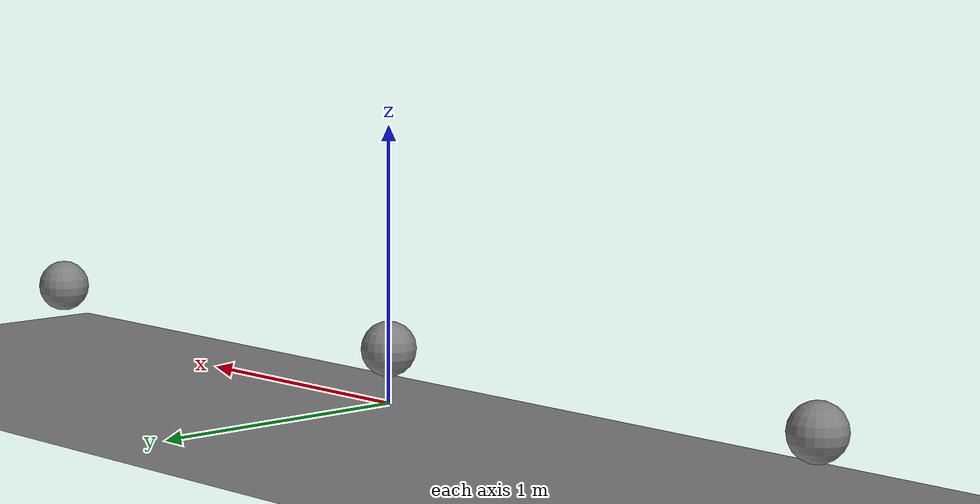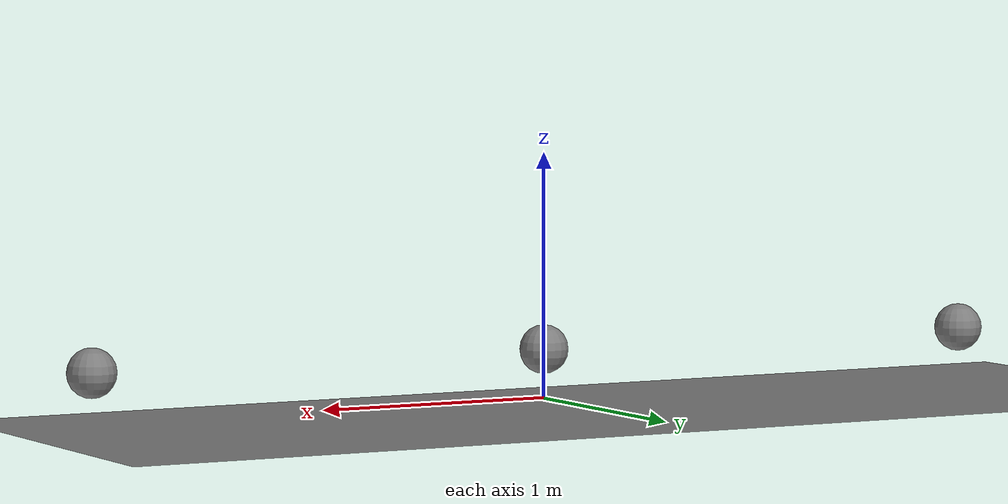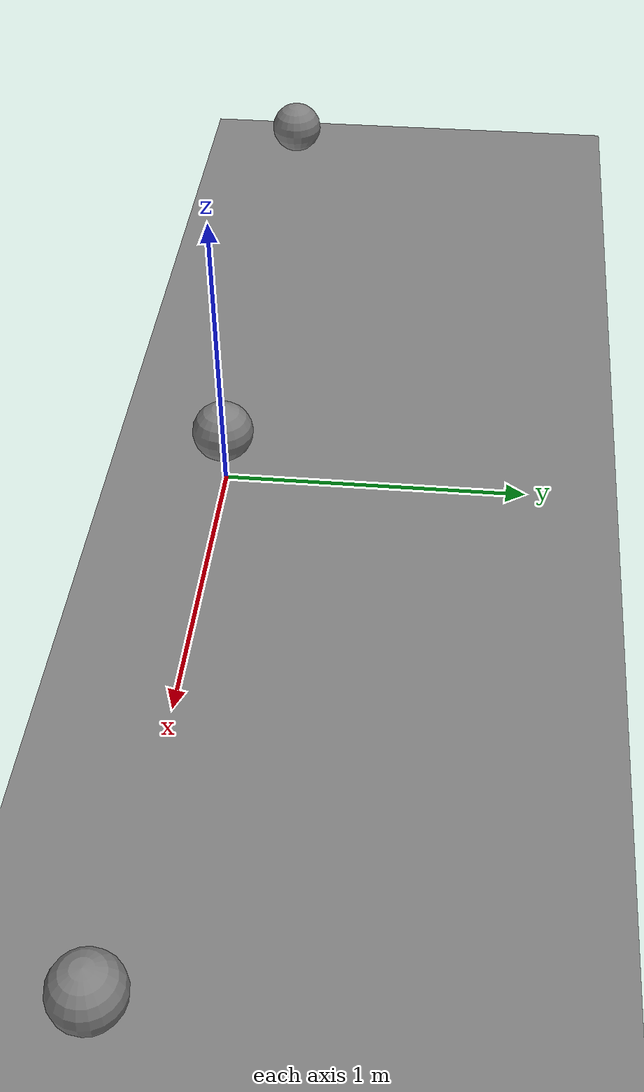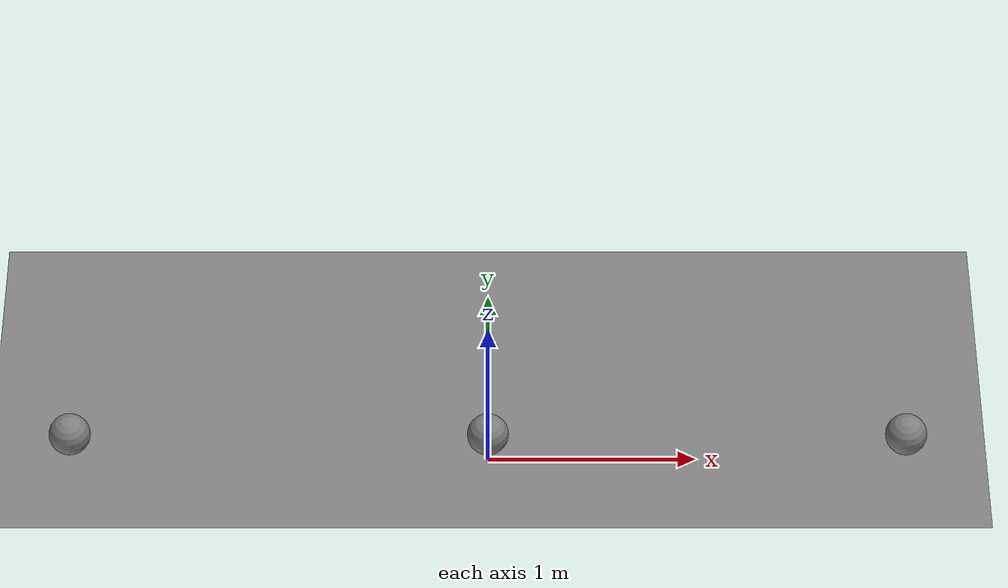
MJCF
<mujoco model="three_tree_crba">
        <option gravity="0 0 -9.81" timestep="0.002" sleep_tolerance="0.1">
            <flag sleep="enable"/>
        </option>
        <worldbody>
            <geom type="plane" size="10 10 0.1" solref="0.005 1.5"/>
            <body name="ball_a" pos="-2 0 0.2">
                <freejoint name="free_a"/>
                <geom type="sphere" size="0.1" mass="1.0" solref="0.005 1.5"/>
            </body>
            <body name="ball_b" pos="0 0 0.2">
                <freejoint name="free_b"/>
                <geom type="sphere" size="0.1" mass="1.0" solref="0.005 1.5"/>
            </body>
            <body name="ball_c" pos="2 0 0.2">
                <freejoint name="free_c"/>
                <geom type="sphere" size="0.1" mass="1.0" solref="0.005 1.5"/>
            </body>
        </worldbody>
    </mujoco>
